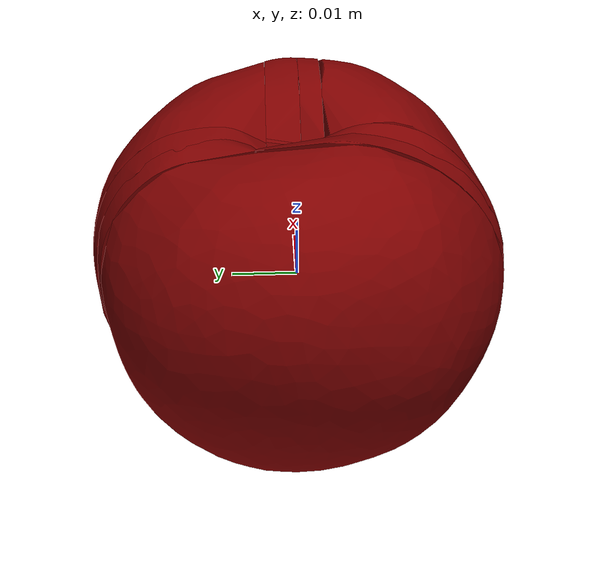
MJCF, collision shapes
<?xml version='1.0' encoding='utf-8'?>
<mujoco model="tomato_4">
  <asset>
    <mesh file="visual/model_normalized_0.obj" name="model_normalized_0_vis" scale="0.06500000000000003 0.06500000000000003 0.06500000000000003" refquat="1.0 0.0 0.0 0.0" />
    <texture type="2d" name="image0" file="visual/image0.png" />
    <material name="material0.023" texture="image0" specular="0.5" shininess="0.25" />
    <mesh file="collision/collision_mesh_collision_0.obj" name="tomato_collision_mesh_0" scale="0.06500000000000003 0.06500000000000003 0.06500000000000003" refquat="1.0 0.0 0.0 0.0" />
    <mesh file="collision/collision_mesh_collision_1.obj" name="tomato_collision_mesh_1" scale="0.06500000000000003 0.06500000000000003 0.06500000000000003" refquat="1.0 0.0 0.0 0.0" />
    <mesh file="collision/collision_mesh_collision_2.obj" name="tomato_collision_mesh_2" scale="0.06500000000000003 0.06500000000000003 0.06500000000000003" refquat="1.0 0.0 0.0 0.0" />
    <mesh file="collision/collision_mesh_collision_3.obj" name="tomato_collision_mesh_3" scale="0.06500000000000003 0.06500000000000003 0.06500000000000003" refquat="1.0 0.0 0.0 0.0" />
    <mesh file="collision/collision_mesh_collision_4.obj" name="tomato_collision_mesh_4" scale="0.06500000000000003 0.06500000000000003 0.06500000000000003" refquat="1.0 0.0 0.0 0.0" />
    <mesh file="collision/collision_mesh_collision_5.obj" name="tomato_collision_mesh_5" scale="0.06500000000000003 0.06500000000000003 0.06500000000000003" refquat="1.0 0.0 0.0 0.0" />
    <mesh file="collision/collision_mesh_collision_6.obj" name="tomato_collision_mesh_6" scale="0.06500000000000003 0.06500000000000003 0.06500000000000003" refquat="1.0 0.0 0.0 0.0" />
    <mesh file="collision/collision_mesh_collision_7.obj" name="tomato_collision_mesh_7" scale="0.06500000000000003 0.06500000000000003 0.06500000000000003" refquat="1.0 0.0 0.0 0.0" />
    <mesh file="collision/collision_mesh_collision_8.obj" name="tomato_collision_mesh_8" scale="0.06500000000000003 0.06500000000000003 0.06500000000000003" refquat="1.0 0.0 0.0 0.0" />
    <mesh file="collision/collision_mesh_collision_9.obj" name="tomato_collision_mesh_9" scale="0.06500000000000003 0.06500000000000003 0.06500000000000003" refquat="1.0 0.0 0.0 0.0" />
    <mesh file="collision/collision_mesh_collision_10.obj" name="tomato_collision_mesh_10" scale="0.06500000000000003 0.06500000000000003 0.06500000000000003" refquat="1.0 0.0 0.0 0.0" />
    </asset>
  <default>
    <default class="region">
      <geom group="1" conaffinity="0" contype="0" rgba="0 1 0 0" />
      </default>
    <default class="collision">
      <geom group="0" rgba="0.5 0 0 0.5" density="1000.0" />
      </default>
    </default>
  <worldbody>
    <body>
      <body name="object">
        <geom solimp="0.998 0.998 0.001" solref="0.001 1" density="100" friction="0.95 0.3 0.1" type="mesh" mesh="model_normalized_0_vis" conaffinity="0" contype="0" group="1" material="material0.023" />
        <geom class="region" name="reg_bbox" type="box" pos="-7.084577499999914e-05 -0.00015003235000000107 0.00021710162499999873" size="0.031936164650000015 0.03044503930000001 0.027974988275000015" />
        <geom mesh="tomato_collision_mesh_0" type="mesh" class="collision" />
        <geom mesh="tomato_collision_mesh_1" type="mesh" class="collision" />
        <geom mesh="tomato_collision_mesh_2" type="mesh" class="collision" />
        <geom mesh="tomato_collision_mesh_3" type="mesh" class="collision" />
        <geom mesh="tomato_collision_mesh_4" type="mesh" class="collision" />
        <geom mesh="tomato_collision_mesh_5" type="mesh" class="collision" />
        <geom mesh="tomato_collision_mesh_6" type="mesh" class="collision" />
        <geom mesh="tomato_collision_mesh_7" type="mesh" class="collision" />
        <geom mesh="tomato_collision_mesh_8" type="mesh" class="collision" />
        <geom mesh="tomato_collision_mesh_9" type="mesh" class="collision" />
        <geom mesh="tomato_collision_mesh_10" type="mesh" class="collision" />
        </body>
      <site rgba="0 0 0 0" size="0.005" pos="0 0 -0.027757887" name="bottom_site" /><site rgba="0 0 0 0" size="0.005" pos="0 0 0.02819209" name="top_site" /><site rgba="0 0 0 0" size="0.005" pos="0.03200701 0.03200701 0" name="horizontal_radius_site" /></body>
    </worldbody>
  </mujoco>
